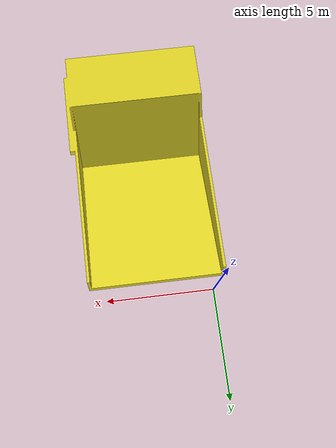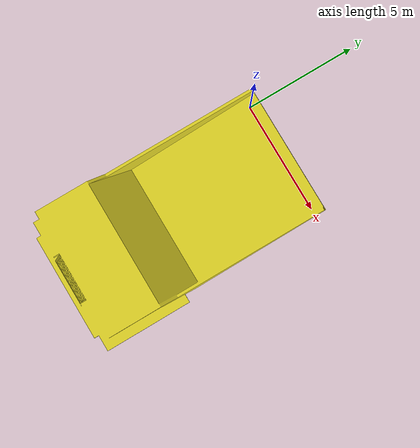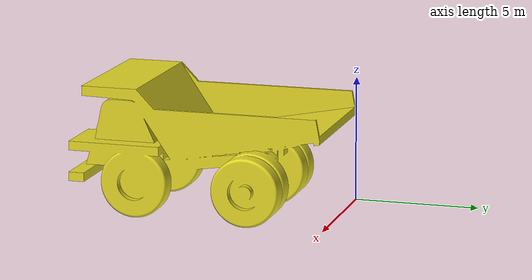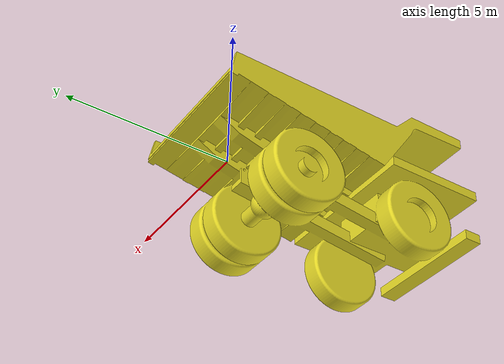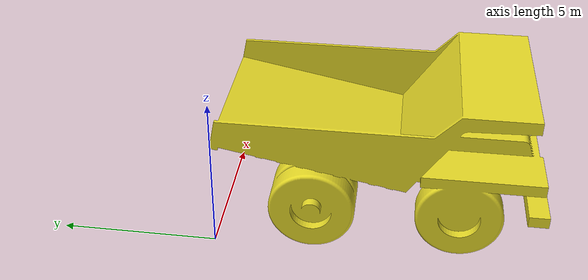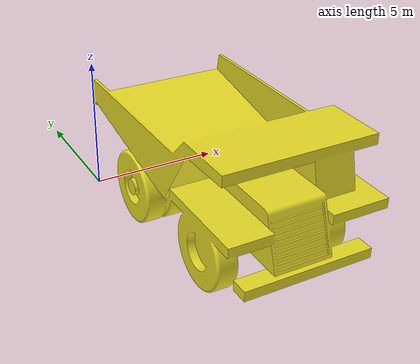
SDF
<?xml version='1.0'?>
<sdf version="1.7">
  <model name="truck">
    <static>true</static>
    <link name="truck_link">
      <collision name="truck_collision">
        <geometry>
          <mesh>
            <uri>/home/brayan/catkin_ws/src/WorldMine/Truck/truck.stl</uri>
          </mesh>
        </geometry>
      </collision>
      <visual name="truck_visual">
        <geometry>
          <mesh>
            <uri>/home/brayan/catkin_ws/src/WorldMine/Truck/truck.stl</uri>
          </mesh>
         </geometry>
         <material>
          <script>
            <uri>file://media/materials/scripts/gazebo.material</uri>
            <name>Gazebo/Yellow</name>
          </script>
        </material>
       </visual>
    </link>
  </model>
</sdf>
